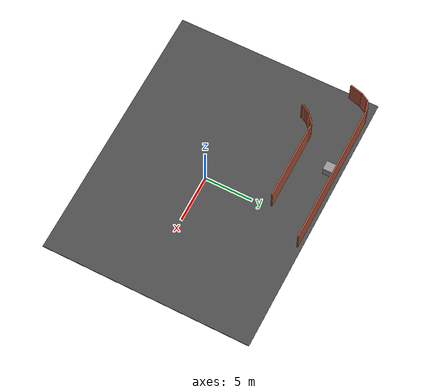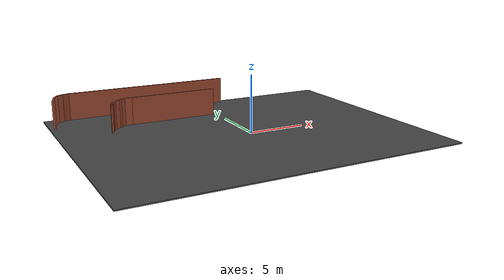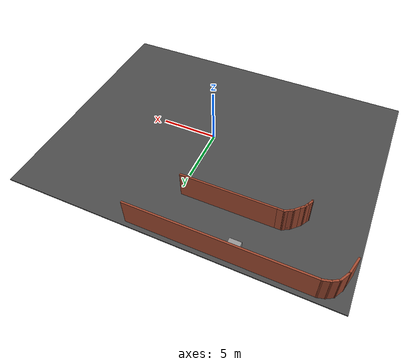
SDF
<sdf version="1.7">
 <world name="default">
  <model name="asphalt_plane">
   <static>1</static>
   <link name="link">
    <collision name="collision"><geometry><box><size>28.54 22.04 0.1</size></box></geometry></collision>
    <visual name="visual">
     <cast_shadows>0</cast_shadows>
     <geometry><box><size>28.54 22.04 0.1</size></box></geometry>
     <material>
      <script>
       <uri>model://asphalt_plane/materials/scripts</uri>
       <uri>model://asphalt_plane/materials/textures</uri>
       <name>vrc/asphalt</name>
      </script>
     </material>
    </visual>
   </link>
   <pose>-0.719505 0.551979 0 0 -0 0</pose>
  </model>
  <model name="unit_box_clone_12">
   <pose>-6.20189 10.3429 0.549999 -2e-06 0 0.0001</pose>
   <link name="link">
    <inertial>
     <mass>1</mass>
     <inertia>
      <ixx>0.166667</ixx>
      <ixy>0</ixy>
      <ixz>0</ixz>
      <iyy>0.166667</iyy>
      <iyz>0</iyz>
      <izz>0.166667</izz>
     </inertia>
    </inertial>
    <collision name="collision"><geometry><box><size>1 1 1</size></box></geometry></collision>
    <visual name="visual">
     <geometry><box><size>1 1 1</size></box></geometry>
     <material>
      <script><name>Gazebo/Grey</name><uri>file://media/materials/scripts/gazebo.material</uri></script>
     </material>
    </visual>
   </link>
  </model>
  <model name="Untitled_6">
   <pose>-6.08621 5.60962 0 0 -0 0</pose>
   <link name="Wall_0">
    <collision name="Wall_0_Collision">
     <geometry><box><size>8 0.15 2.5</size></box></geometry>
     <pose>0 0 1.25 0 -0 0</pose>
    </collision>
    <visual name="Wall_0_Visual">
     <pose>0 0 1.25 0 -0 0</pose>
     <geometry><box><size>8 0.15 2.5</size></box></geometry>
     <material>
      <script><uri>file://media/materials/scripts/gazebo.material</uri><name>Gazebo/Bricks</name></script>
      <ambient>1 1 1 1</ambient>
     </material>
     <meta><layer>0</layer></meta>
    </visual>
    <pose>1.81947 1.3961 0 0 -0 0</pose>
   </link>
   <link name="Wall_13">
    <collision name="Wall_13_Collision">
     <geometry><box><size>15.25 0.15 2.5</size></box></geometry>
     <pose>0 0 1.25 0 -0 0</pose>
    </collision>
    <visual name="Wall_13_Visual">
     <pose>0 0 1.25 0 -0 0</pose>
     <geometry><box><size>15.25 0.15 2.5</size></box></geometry>
     <material>
      <script><uri>file://media/materials/scripts/gazebo.material</uri><name>Gazebo/Bricks</name></script>
      <ambient>1 1 1 1</ambient>
     </material>
     <meta><layer>0</layer></meta>
    </visual>
    <pose>0.945216 5.51776 0 0 -0 0</pose>
   </link>
   <link name="Wall_16">
    <collision name="Wall_16_Collision">
     <geometry><box><size>0.75 0.15 2.5</size></box></geometry>
     <pose>0 0 1.25 0 -0 0</pose>
    </collision>
    <visual name="Wall_16_Visual">
     <pose>0 0 1.25 0 -0 0</pose>
     <geometry><box><size>0.75 0.15 2.5</size></box></geometry>
     <material>
      <script><uri>file://media/materials/scripts/gazebo.material</uri><name>Gazebo/Bricks</name></script>
      <ambient>1 1 1 1</ambient>
     </material>
     <meta><layer>0</layer></meta>
    </visual>
    <pose>-6.89456 5.44012 0 0 -0 -2.87979</pose>
   </link>
   <link name="Wall_17">
    <collision name="Wall_17_Collision">
     <geometry><box><size>0.75 0.15 2.5</size></box></geometry>
     <pose>0 0 1.25 0 -0 0</pose>
    </collision>
    <visual name="Wall_17_Visual">
     <pose>0 0 1.25 0 -0 0</pose>
     <geometry><box><size>0.75 0.15 2.5</size></box></geometry>
     <material>
      <script><uri>file://media/materials/scripts/gazebo.material</uri><name>Gazebo/Bricks</name></script>
      <ambient>1 1 1 1</ambient>
     </material>
     <meta><layer>0</layer></meta>
    </visual>
    <pose>-7.44415 5.21247 0 0 -0 -2.61799</pose>
   </link>
   <link name="Wall_2">
    <collision name="Wall_2_Collision">
     <geometry><box><size>0.75 0.15 2.5</size></box></geometry>
     <pose>0 0 1.25 0 -0 0</pose>
    </collision>
    <visual name="Wall_2_Visual">
     <pose>0 0 1.25 0 -0 0</pose>
     <geometry><box><size>0.75 0.15 2.5</size></box></geometry>
     <material>
      <script><uri>file://media/materials/scripts/gazebo.material</uri><name>Gazebo/Bricks</name></script>
      <ambient>1 1 1 1</ambient>
     </material>
     <meta><layer>0</layer></meta>
    </visual>
    <pose>-2.40553 1.3961 0 0 -0 3.14159</pose>
   </link>
   <link name="Wall_20">
    <collision name="Wall_20_Collision">
     <geometry><box><size>1 0.15 2.5</size></box></geometry>
     <pose>0 0 1.25 0 -0 0</pose>
    </collision>
    <visual name="Wall_20_Visual">
     <pose>0 0 1.25 0 -0 0</pose>
     <geometry><box><size>1 0.15 2.5</size></box></geometry>
     <material>
      <script><uri>file://media/materials/scripts/gazebo.material</uri><name>Gazebo/Bricks</name></script>
      <ambient>1 1 1 1</ambient>
     </material>
     <meta><layer>0</layer></meta>
    </visual>
    <pose>-7.91645 4.69441 0 0 -0 -2.0944</pose>
   </link>
   <link name="Wall_21">
    <collision name="Wall_21_Collision">
     <geometry><box><size>1.5 0.15 2.5</size></box></geometry>
     <pose>0 0 1.25 0 -0 0</pose>
    </collision>
    <visual name="Wall_21_Visual">
     <pose>0 0 1.25 0 -0 0</pose>
     <geometry><box><size>1.5 0.15 2.5</size></box></geometry>
     <material>
      <script><uri>file://media/materials/scripts/gazebo.material</uri><name>Gazebo/Bricks</name></script>
      <ambient>1 1 1 1</ambient>
     </material>
     <meta><layer>0</layer></meta>
    </visual>
    <pose>-8.30366 3.67435 0 0 -0 -1.8326</pose>
   </link>
   <link name="Wall_3">
    <collision name="Wall_3_Collision">
     <geometry><box><size>0.5 0.15 2.5</size></box></geometry>
     <pose>0 0 1.25 0 -0 0</pose>
    </collision>
    <visual name="Wall_3_Visual">
     <pose>0 0 1.25 0 -0 0</pose>
     <geometry><box><size>0.5 0.15 2.5</size></box></geometry>
     <material>
      <script><uri>file://media/materials/scripts/gazebo.material</uri><name>Gazebo/Bricks</name></script>
      <ambient>1 1 1 1</ambient>
     </material>
     <meta><layer>0</layer></meta>
    </visual>
    <pose>-2.85709 1.3086 0 0 -0 -2.61799</pose>
   </link>
   <link name="Wall_4">
    <collision name="Wall_4_Collision">
     <geometry><box><size>0.5 0.15 2.5</size></box></geometry>
     <pose>0 0 1.25 0 -0 0</pose>
    </collision>
    <visual name="Wall_4_Visual">
     <pose>0 0 1.25 0 -0 0</pose>
     <geometry><box><size>0.5 0.15 2.5</size></box></geometry>
     <material>
      <script><uri>file://media/materials/scripts/gazebo.material</uri><name>Gazebo/Bricks</name></script>
      <ambient>1 1 1 1</ambient>
     </material>
     <meta><layer>0</layer></meta>
    </visual>
    <pose>-3.1602 1.1336 0 0 -0 -2.61799</pose>
   </link>
   <link name="Wall_5">
    <collision name="Wall_5_Collision">
     <geometry><box><size>0.75 0.15 2.5</size></box></geometry>
     <pose>0 0 1.25 0 -0 0</pose>
    </collision>
    <visual name="Wall_5_Visual">
     <pose>0 0 1.25 0 -0 0</pose>
     <geometry><box><size>0.75 0.15 2.5</size></box></geometry>
     <material>
      <script><uri>file://media/materials/scripts/gazebo.material</uri><name>Gazebo/Bricks</name></script>
      <ambient>1 1 1 1</ambient>
     </material>
     <meta><layer>0</layer></meta>
    </visual>
    <pose>-3.52388 0.83397 0 0 -0 -2.35619</pose>
   </link>
   <link name="Wall_6">
    <collision name="Wall_6_Collision">
     <geometry><box><size>0.5 0.15 2.5</size></box></geometry>
     <pose>0 0 1.25 0 -0 0</pose>
    </collision>
    <visual name="Wall_6_Visual">
     <pose>0 0 1.25 0 -0 0</pose>
     <geometry><box><size>0.5 0.15 2.5</size></box></geometry>
     <material>
      <script><uri>file://media/materials/scripts/gazebo.material</uri><name>Gazebo/Bricks</name></script>
      <ambient>1 1 1 1</ambient>
     </material>
     <meta><layer>0</layer></meta>
    </visual>
    <pose>-3.85976 0.498094 0 0 -0 -2.35619</pose>
   </link>
   <link name="Wall_7">
    <collision name="Wall_7_Collision">
     <geometry><box><size>0.5 0.15 2.5</size></box></geometry>
     <pose>0 0 1.25 0 -0 0</pose>
    </collision>
    <visual name="Wall_7_Visual">
     <pose>0 0 1.25 0 -0 0</pose>
     <geometry><box><size>0.5 0.15 2.5</size></box></geometry>
     <material>
      <script><uri>file://media/materials/scripts/gazebo.material</uri><name>Gazebo/Bricks</name></script>
      <ambient>1 1 1 1</ambient>
     </material>
     <meta><layer>0</layer></meta>
    </visual>
    <pose>-4.071 0.222796 0 0 -0 -2.0944</pose>
   </link>
   <link name="Wall_8">
    <collision name="Wall_8_Collision">
     <geometry><box><size>0.5 0.15 2.5</size></box></geometry>
     <pose>0 0 1.25 0 -0 0</pose>
    </collision>
    <visual name="Wall_8_Visual">
     <pose>0 0 1.25 0 -0 0</pose>
     <geometry><box><size>0.5 0.15 2.5</size></box></geometry>
     <material>
      <script><uri>file://media/materials/scripts/gazebo.material</uri><name>Gazebo/Bricks</name></script>
      <ambient>1 1 1 1</ambient>
     </material>
     <meta><layer>0</layer></meta>
    </visual>
    <pose>-4.246 -0.080313 0 0 -0 -2.0944</pose>
   </link>
   <link name="Wall_9">
    <collision name="Wall_9_Collision">
     <geometry><box><size>0.25 0.15 2.5</size></box></geometry>
     <pose>0 0 1.25 0 -0 0</pose>
    </collision>
    <visual name="Wall_9_Visual">
     <pose>0 0 1.25 0 -0 0</pose>
     <geometry><box><size>0.25 0.15 2.5</size></box></geometry>
     <material>
      <script><uri>file://media/materials/scripts/gazebo.material</uri><name>Gazebo/Bricks</name></script>
      <ambient>1 1 1 1</ambient>
     </material>
     <meta><layer>0</layer></meta>
    </visual>
    <pose>-4.3335 -0.281868 0 0 -0 -1.5708</pose>
   </link>
   <static>1</static>
  </model>
 </world>
</sdf>
